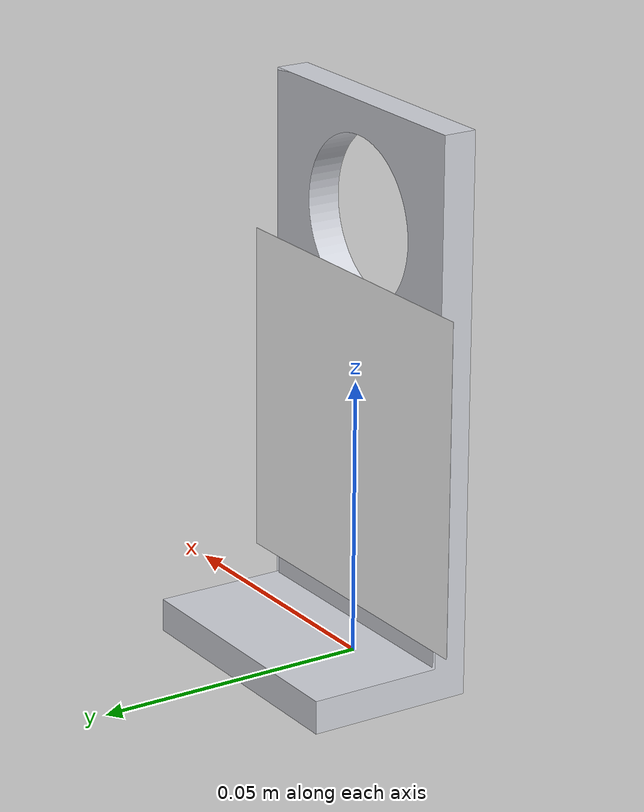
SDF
<?xml version="1.0" ?>
<sdf version="1.9">
  <model name="payload">
    <static>false</static>
    <link name="payload_link">
      <inertial>
        <mass>0.3</mass>
        <inertia>
          <ixx>2.51e-4</ixx><iyy>3.13e-4</iyy><izz>6.34e-5</izz>
          <ixy>0</ixy><ixz>0</ixz><iyz>0</iyz>
        </inertia>
      </inertial>
      <collision name="body_collision">
        <pose>0 0.004 0.0325 0 0 0</pose>
        <geometry><box><size>0.05 0.02 0.065</size></box></geometry>
      </collision>
      <collision name="slot_left_collision">
        <pose>-0.055 -0.003 0.09325 0 0 0</pose>
        <geometry><box><size>0.008 0.006 0.0135</size></box></geometry>
      </collision>
      <collision name="slot_right_collision">
        <pose>0.055 -0.003 0.09325 0 0 0</pose>
        <geometry><box><size>0.008 0.006 0.0135</size></box></geometry>
      </collision>
      <collision name="bar_collision">
        <pose>0 0.004 0.1275 0 0 0</pose>
        <geometry><box><size>0.05 0.02 0.025</size></box></geometry>
      </collision>
      <visual name="body_1">
        <geometry>
          <mesh><uri>model://hydroships_gazebo/media/payload_body.obj</uri></mesh>
        </geometry>
        <material>
          <ambient>0.75 0.76 0.80 1</ambient>
          <diffuse>0.82 0.83 0.86 1</diffuse>
        </material>
      </visual>
      <visual name="qr_1">
        <pose>0 0.0012 0.04 0 0 0</pose>
        <geometry><plane><normal>0 1 0</normal><size>0.06 0.06</size></plane></geometry>
        <material>
          <diffuse>1 1 1 1</diffuse>
          <specular>0 0 0 1</specular>
          <pbr>
            <metal>
              <albedo_map>model://hydroships_gazebo/media/qr_A.png</albedo_map>
              <emissive_map>model://hydroships_gazebo/media/qr_A.png</emissive_map>
              <metalness>0.0</metalness>
              <roughness>1.0</roughness>
            </metal>
          </pbr>
        </material>
      </visual>
      <velocity_decay>
        <linear>1.0</linear>
        <angular>1.0</angular>
      </velocity_decay>
    </link>
  </model>
</sdf>
